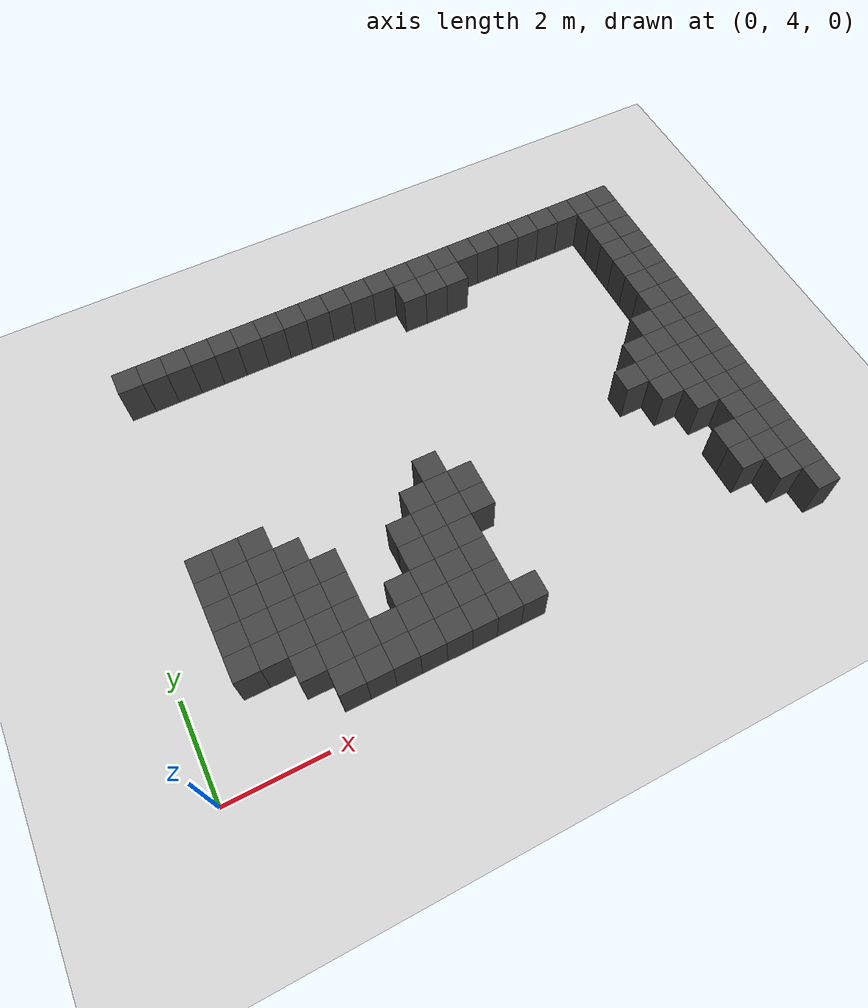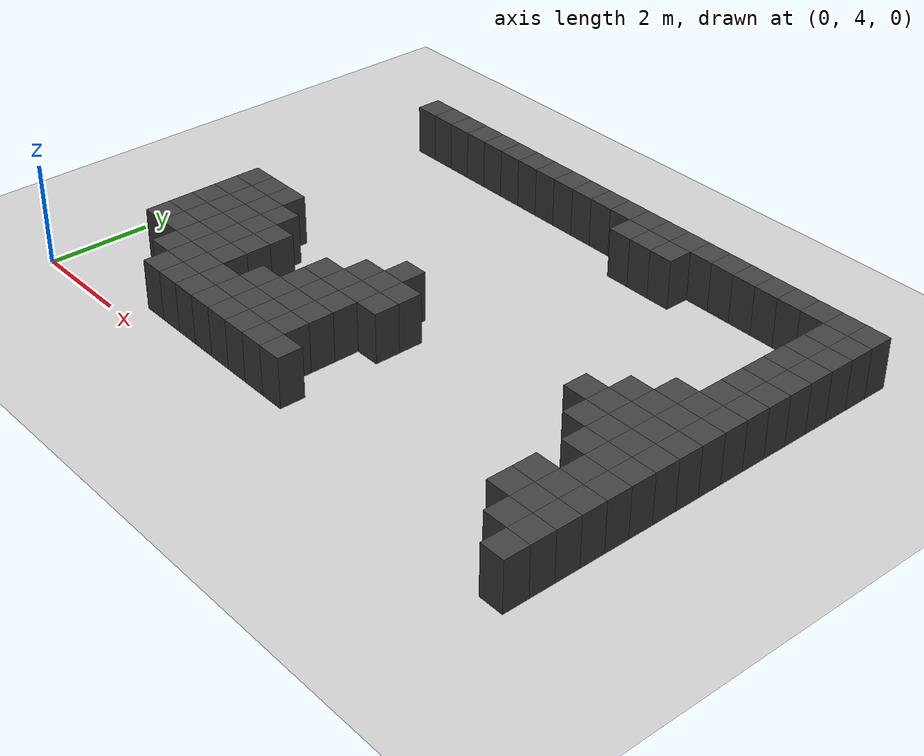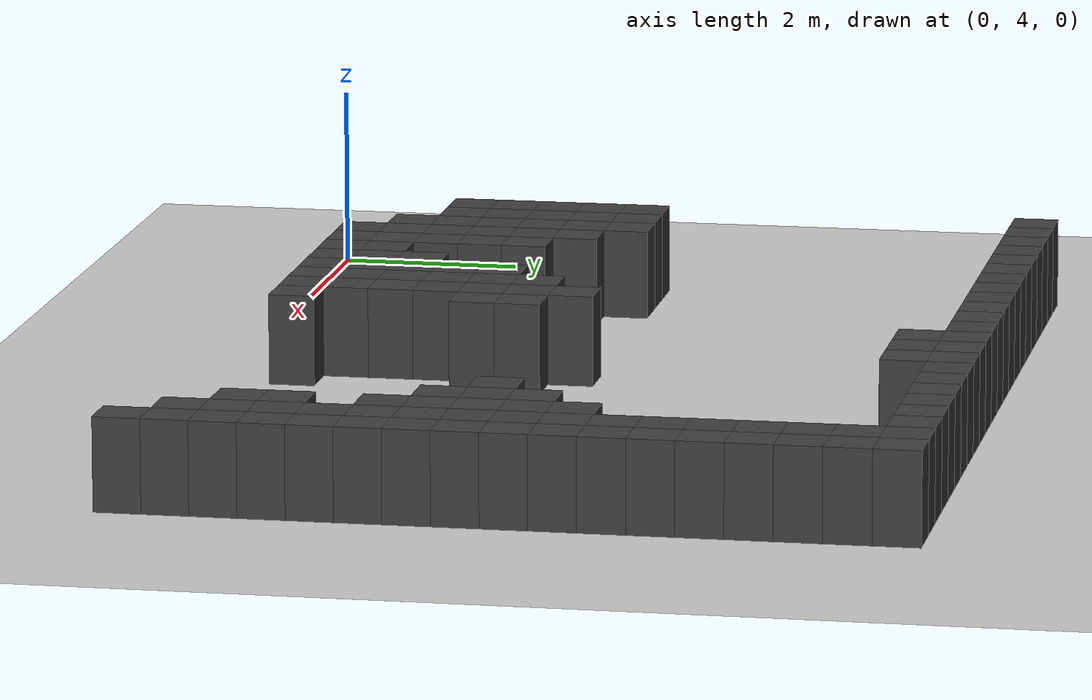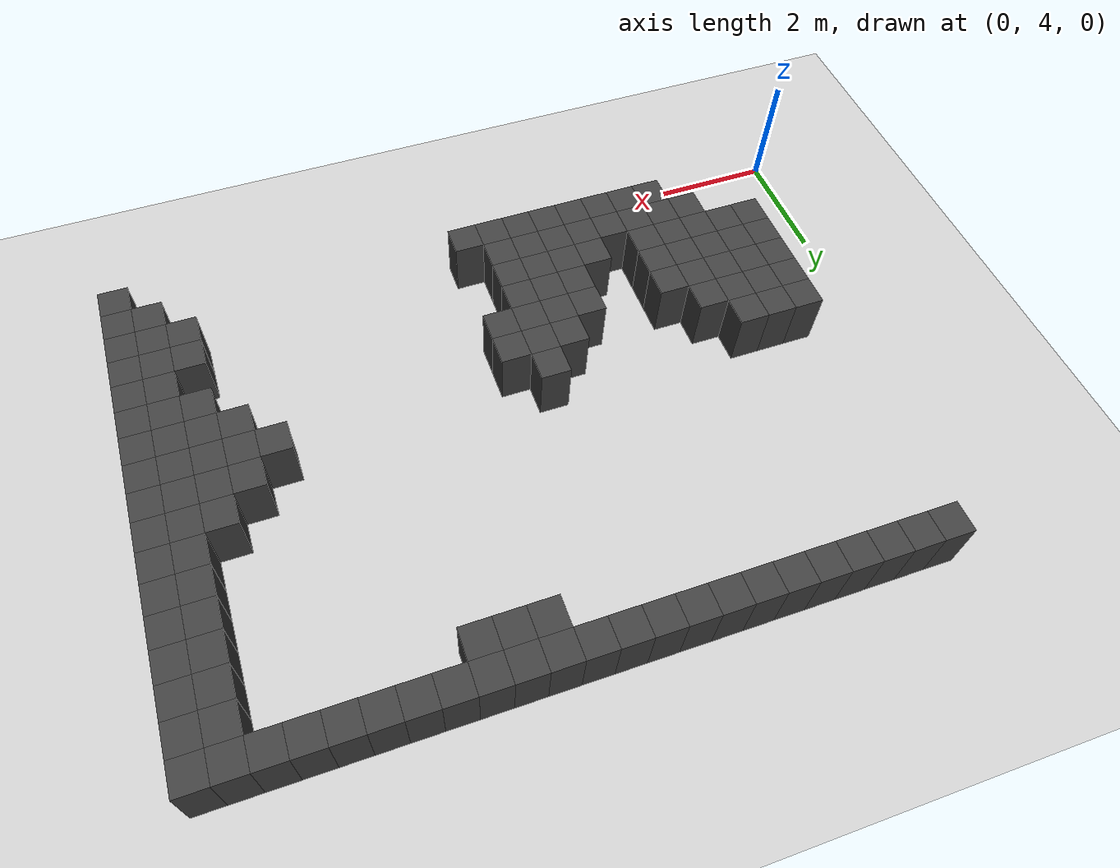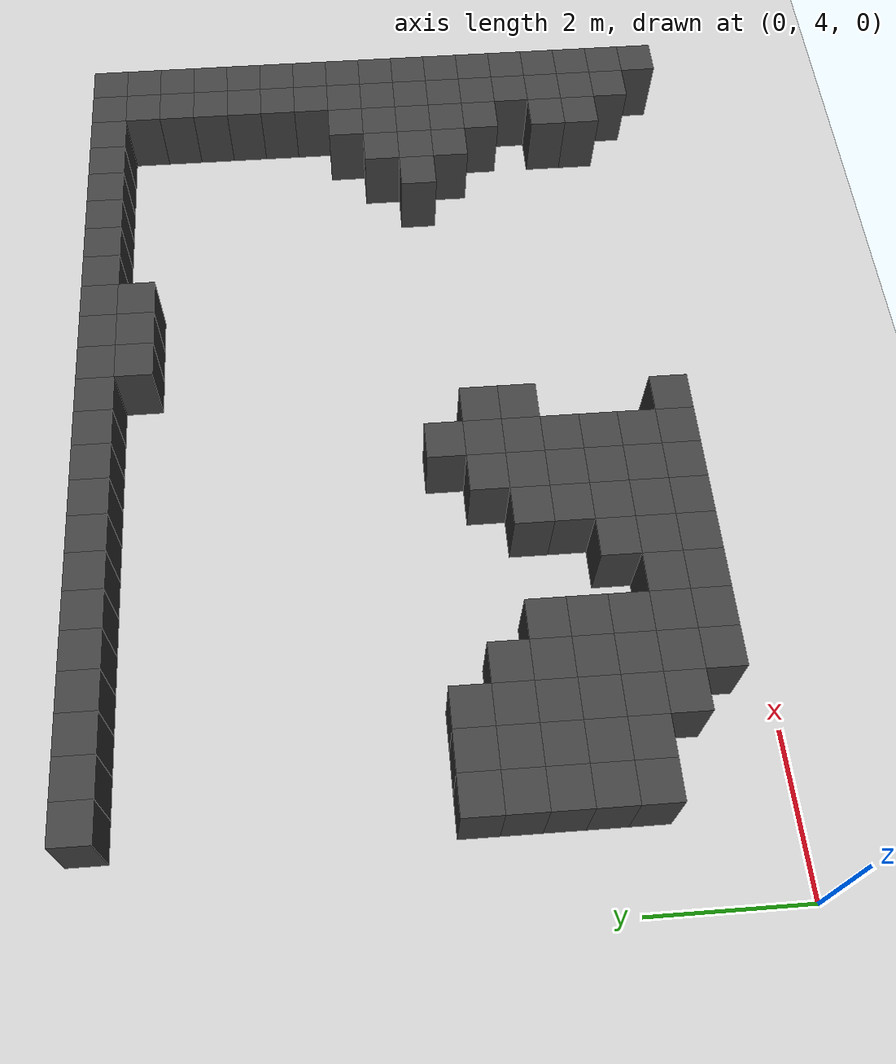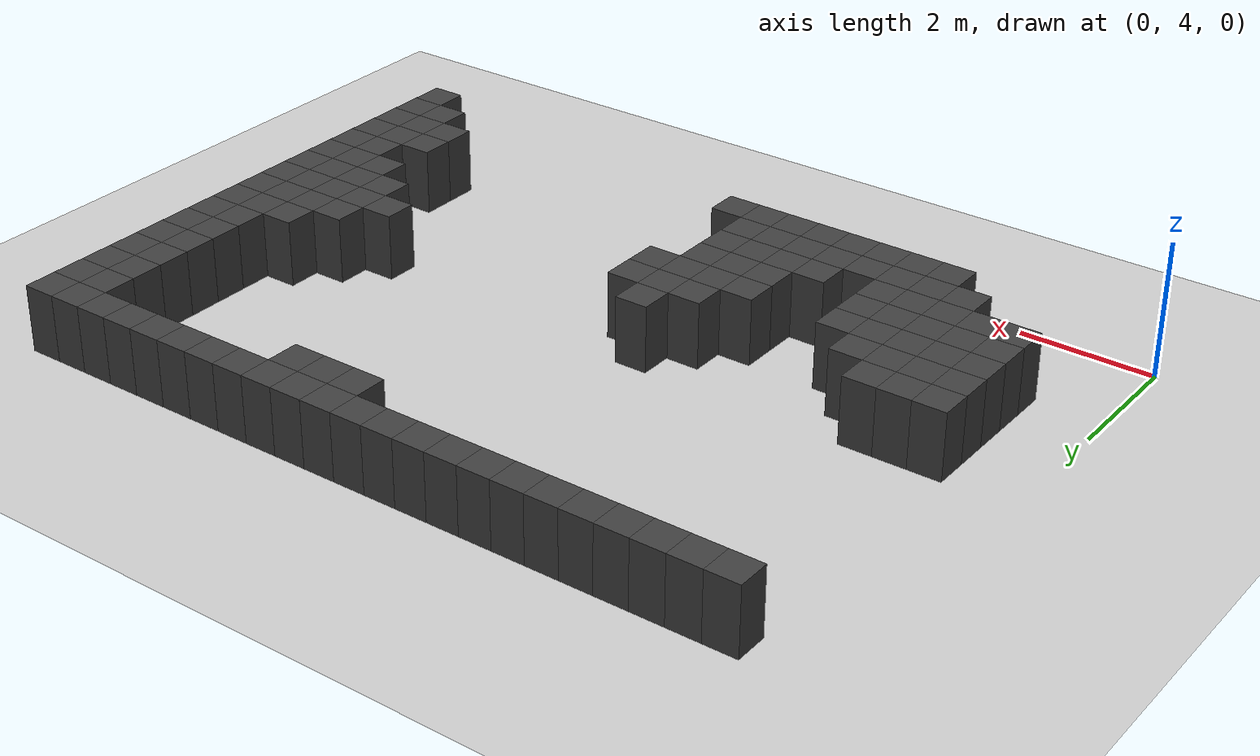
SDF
<sdf version="1.7">
 <world name="map_8661">
  <model name="ground_plane">
   <static>true</static>
   <link name="link">
    <collision name="collision">
     <geometry><plane><normal>0 0 1</normal><size>200 200</size></plane></geometry>
    </collision>
    <visual name="visual">
     <geometry><plane><normal>0 0 1</normal><size>200 200</size></plane></geometry>
     <material><ambient>0.8 0.8 0.8 1</ambient><diffuse>0.8 0.8 0.8 1</diffuse></material>
    </visual>
   </link>
  </model>
  <model name="maze_environment">
   <static>true</static>
   <link name="wall_27">
    <pose>1.250 12.250 0.500 0 0 0</pose>
    <collision name="col"><geometry><box><size>0.5 0.5 1.0</size></box></geometry></collision>
    <visual name="vis">
     <geometry><box><size>0.5 0.5 1.0</size></box></geometry>
     <material><ambient>0.15 0.15 0.15 1</ambient><diffuse>0.25 0.25 0.25 1</diffuse></material>
    </visual>
   </link>
   <link name="wall_28">
    <pose>1.750 12.250 0.500 0 0 0</pose>
    <collision name="col"><geometry><box><size>0.5 0.5 1.0</size></box></geometry></collision>
    <visual name="vis">
     <geometry><box><size>0.5 0.5 1.0</size></box></geometry>
     <material><ambient>0.15 0.15 0.15 1</ambient><diffuse>0.25 0.25 0.25 1</diffuse></material>
    </visual>
   </link>
   <link name="wall_29">
    <pose>2.250 12.250 0.500 0 0 0</pose>
    <collision name="col"><geometry><box><size>0.5 0.5 1.0</size></box></geometry></collision>
    <visual name="vis">
     <geometry><box><size>0.5 0.5 1.0</size></box></geometry>
     <material><ambient>0.15 0.15 0.15 1</ambient><diffuse>0.25 0.25 0.25 1</diffuse></material>
    </visual>
   </link>
   <link name="wall_30">
    <pose>2.750 12.250 0.500 0 0 0</pose>
    <collision name="col"><geometry><box><size>0.5 0.5 1.0</size></box></geometry></collision>
    <visual name="vis">
     <geometry><box><size>0.5 0.5 1.0</size></box></geometry>
     <material><ambient>0.15 0.15 0.15 1</ambient><diffuse>0.25 0.25 0.25 1</diffuse></material>
    </visual>
   </link>
   <link name="wall_31">
    <pose>3.250 12.250 0.500 0 0 0</pose>
    <collision name="col"><geometry><box><size>0.5 0.5 1.0</size></box></geometry></collision>
    <visual name="vis">
     <geometry><box><size>0.5 0.5 1.0</size></box></geometry>
     <material><ambient>0.15 0.15 0.15 1</ambient><diffuse>0.25 0.25 0.25 1</diffuse></material>
    </visual>
   </link>
   <link name="wall_32">
    <pose>3.750 12.250 0.500 0 0 0</pose>
    <collision name="col"><geometry><box><size>0.5 0.5 1.0</size></box></geometry></collision>
    <visual name="vis">
     <geometry><box><size>0.5 0.5 1.0</size></box></geometry>
     <material><ambient>0.15 0.15 0.15 1</ambient><diffuse>0.25 0.25 0.25 1</diffuse></material>
    </visual>
   </link>
   <link name="wall_33">
    <pose>4.250 12.250 0.500 0 0 0</pose>
    <collision name="col"><geometry><box><size>0.5 0.5 1.0</size></box></geometry></collision>
    <visual name="vis">
     <geometry><box><size>0.5 0.5 1.0</size></box></geometry>
     <material><ambient>0.15 0.15 0.15 1</ambient><diffuse>0.25 0.25 0.25 1</diffuse></material>
    </visual>
   </link>
   <link name="wall_34">
    <pose>4.750 12.250 0.500 0 0 0</pose>
    <collision name="col"><geometry><box><size>0.5 0.5 1.0</size></box></geometry></collision>
    <visual name="vis">
     <geometry><box><size>0.5 0.5 1.0</size></box></geometry>
     <material><ambient>0.15 0.15 0.15 1</ambient><diffuse>0.25 0.25 0.25 1</diffuse></material>
    </visual>
   </link>
   <link name="wall_35">
    <pose>5.250 12.250 0.500 0 0 0</pose>
    <collision name="col"><geometry><box><size>0.5 0.5 1.0</size></box></geometry></collision>
    <visual name="vis">
     <geometry><box><size>0.5 0.5 1.0</size></box></geometry>
     <material><ambient>0.15 0.15 0.15 1</ambient><diffuse>0.25 0.25 0.25 1</diffuse></material>
    </visual>
   </link>
   <link name="wall_36">
    <pose>5.750 12.250 0.500 0 0 0</pose>
    <collision name="col"><geometry><box><size>0.5 0.5 1.0</size></box></geometry></collision>
    <visual name="vis">
     <geometry><box><size>0.5 0.5 1.0</size></box></geometry>
     <material><ambient>0.15 0.15 0.15 1</ambient><diffuse>0.25 0.25 0.25 1</diffuse></material>
    </visual>
   </link>
   <link name="wall_37">
    <pose>6.250 12.250 0.500 0 0 0</pose>
    <collision name="col"><geometry><box><size>0.5 0.5 1.0</size></box></geometry></collision>
    <visual name="vis">
     <geometry><box><size>0.5 0.5 1.0</size></box></geometry>
     <material><ambient>0.15 0.15 0.15 1</ambient><diffuse>0.25 0.25 0.25 1</diffuse></material>
    </visual>
   </link>
   <link name="wall_38">
    <pose>6.750 12.250 0.500 0 0 0</pose>
    <collision name="col"><geometry><box><size>0.5 0.5 1.0</size></box></geometry></collision>
    <visual name="vis">
     <geometry><box><size>0.5 0.5 1.0</size></box></geometry>
     <material><ambient>0.15 0.15 0.15 1</ambient><diffuse>0.25 0.25 0.25 1</diffuse></material>
    </visual>
   </link>
   <link name="wall_39">
    <pose>7.250 12.250 0.500 0 0 0</pose>
    <collision name="col"><geometry><box><size>0.5 0.5 1.0</size></box></geometry></collision>
    <visual name="vis">
     <geometry><box><size>0.5 0.5 1.0</size></box></geometry>
     <material><ambient>0.15 0.15 0.15 1</ambient><diffuse>0.25 0.25 0.25 1</diffuse></material>
    </visual>
   </link>
   <link name="wall_40">
    <pose>7.750 12.250 0.500 0 0 0</pose>
    <collision name="col"><geometry><box><size>0.5 0.5 1.0</size></box></geometry></collision>
    <visual name="vis">
     <geometry><box><size>0.5 0.5 1.0</size></box></geometry>
     <material><ambient>0.15 0.15 0.15 1</ambient><diffuse>0.25 0.25 0.25 1</diffuse></material>
    </visual>
   </link>
   <link name="wall_41">
    <pose>8.250 12.250 0.500 0 0 0</pose>
    <collision name="col"><geometry><box><size>0.5 0.5 1.0</size></box></geometry></collision>
    <visual name="vis">
     <geometry><box><size>0.5 0.5 1.0</size></box></geometry>
     <material><ambient>0.15 0.15 0.15 1</ambient><diffuse>0.25 0.25 0.25 1</diffuse></material>
    </visual>
   </link>
   <link name="wall_42">
    <pose>8.750 12.250 0.500 0 0 0</pose>
    <collision name="col"><geometry><box><size>0.5 0.5 1.0</size></box></geometry></collision>
    <visual name="vis">
     <geometry><box><size>0.5 0.5 1.0</size></box></geometry>
     <material><ambient>0.15 0.15 0.15 1</ambient><diffuse>0.25 0.25 0.25 1</diffuse></material>
    </visual>
   </link>
   <link name="wall_43">
    <pose>9.250 12.250 0.500 0 0 0</pose>
    <collision name="col"><geometry><box><size>0.5 0.5 1.0</size></box></geometry></collision>
    <visual name="vis">
     <geometry><box><size>0.5 0.5 1.0</size></box></geometry>
     <material><ambient>0.15 0.15 0.15 1</ambient><diffuse>0.25 0.25 0.25 1</diffuse></material>
    </visual>
   </link>
   <link name="wall_44">
    <pose>9.750 12.250 0.500 0 0 0</pose>
    <collision name="col"><geometry><box><size>0.5 0.5 1.0</size></box></geometry></collision>
    <visual name="vis">
     <geometry><box><size>0.5 0.5 1.0</size></box></geometry>
     <material><ambient>0.15 0.15 0.15 1</ambient><diffuse>0.25 0.25 0.25 1</diffuse></material>
    </visual>
   </link>
   <link name="wall_45">
    <pose>10.250 12.250 0.500 0 0 0</pose>
    <collision name="col"><geometry><box><size>0.5 0.5 1.0</size></box></geometry></collision>
    <visual name="vis">
     <geometry><box><size>0.5 0.5 1.0</size></box></geometry>
     <material><ambient>0.15 0.15 0.15 1</ambient><diffuse>0.25 0.25 0.25 1</diffuse></material>
    </visual>
   </link>
   <link name="wall_46">
    <pose>10.750 12.250 0.500 0 0 0</pose>
    <collision name="col"><geometry><box><size>0.5 0.5 1.0</size></box></geometry></collision>
    <visual name="vis">
     <geometry><box><size>0.5 0.5 1.0</size></box></geometry>
     <material><ambient>0.15 0.15 0.15 1</ambient><diffuse>0.25 0.25 0.25 1</diffuse></material>
    </visual>
   </link>
   <link name="wall_47">
    <pose>11.250 12.250 0.500 0 0 0</pose>
    <collision name="col"><geometry><box><size>0.5 0.5 1.0</size></box></geometry></collision>
    <visual name="vis">
     <geometry><box><size>0.5 0.5 1.0</size></box></geometry>
     <material><ambient>0.15 0.15 0.15 1</ambient><diffuse>0.25 0.25 0.25 1</diffuse></material>
    </visual>
   </link>
   <link name="wall_48">
    <pose>11.750 12.250 0.500 0 0 0</pose>
    <collision name="col"><geometry><box><size>0.5 0.5 1.0</size></box></geometry></collision>
    <visual name="vis">
     <geometry><box><size>0.5 0.5 1.0</size></box></geometry>
     <material><ambient>0.15 0.15 0.15 1</ambient><diffuse>0.25 0.25 0.25 1</diffuse></material>
    </visual>
   </link>
   <link name="wall_49">
    <pose>12.250 12.250 0.500 0 0 0</pose>
    <collision name="col"><geometry><box><size>0.5 0.5 1.0</size></box></geometry></collision>
    <visual name="vis">
     <geometry><box><size>0.5 0.5 1.0</size></box></geometry>
     <material><ambient>0.15 0.15 0.15 1</ambient><diffuse>0.25 0.25 0.25 1</diffuse></material>
    </visual>
   </link>
   <link name="wall_63">
    <pose>7.250 11.750 0.500 0 0 0</pose>
    <collision name="col"><geometry><box><size>0.5 0.5 1.0</size></box></geometry></collision>
    <visual name="vis">
     <geometry><box><size>0.5 0.5 1.0</size></box></geometry>
     <material><ambient>0.15 0.15 0.15 1</ambient><diffuse>0.25 0.25 0.25 1</diffuse></material>
    </visual>
   </link>
   <link name="wall_64">
    <pose>7.750 11.750 0.500 0 0 0</pose>
    <collision name="col"><geometry><box><size>0.5 0.5 1.0</size></box></geometry></collision>
    <visual name="vis">
     <geometry><box><size>0.5 0.5 1.0</size></box></geometry>
     <material><ambient>0.15 0.15 0.15 1</ambient><diffuse>0.25 0.25 0.25 1</diffuse></material>
    </visual>
   </link>
   <link name="wall_65">
    <pose>8.250 11.750 0.500 0 0 0</pose>
    <collision name="col"><geometry><box><size>0.5 0.5 1.0</size></box></geometry></collision>
    <visual name="vis">
     <geometry><box><size>0.5 0.5 1.0</size></box></geometry>
     <material><ambient>0.15 0.15 0.15 1</ambient><diffuse>0.25 0.25 0.25 1</diffuse></material>
    </visual>
   </link>
   <link name="wall_66">
    <pose>11.750 11.750 0.500 0 0 0</pose>
    <collision name="col"><geometry><box><size>0.5 0.5 1.0</size></box></geometry></collision>
    <visual name="vis">
     <geometry><box><size>0.5 0.5 1.0</size></box></geometry>
     <material><ambient>0.15 0.15 0.15 1</ambient><diffuse>0.25 0.25 0.25 1</diffuse></material>
    </visual>
   </link>
   <link name="wall_67">
    <pose>12.250 11.750 0.500 0 0 0</pose>
    <collision name="col"><geometry><box><size>0.5 0.5 1.0</size></box></geometry></collision>
    <visual name="vis">
     <geometry><box><size>0.5 0.5 1.0</size></box></geometry>
     <material><ambient>0.15 0.15 0.15 1</ambient><diffuse>0.25 0.25 0.25 1</diffuse></material>
    </visual>
   </link>
   <link name="wall_74">
    <pose>11.750 11.250 0.500 0 0 0</pose>
    <collision name="col"><geometry><box><size>0.5 0.5 1.0</size></box></geometry></collision>
    <visual name="vis">
     <geometry><box><size>0.5 0.5 1.0</size></box></geometry>
     <material><ambient>0.15 0.15 0.15 1</ambient><diffuse>0.25 0.25 0.25 1</diffuse></material>
    </visual>
   </link>
   <link name="wall_75">
    <pose>12.250 11.250 0.500 0 0 0</pose>
    <collision name="col"><geometry><box><size>0.5 0.5 1.0</size></box></geometry></collision>
    <visual name="vis">
     <geometry><box><size>0.5 0.5 1.0</size></box></geometry>
     <material><ambient>0.15 0.15 0.15 1</ambient><diffuse>0.25 0.25 0.25 1</diffuse></material>
    </visual>
   </link>
   <link name="wall_81">
    <pose>11.750 10.750 0.500 0 0 0</pose>
    <collision name="col"><geometry><box><size>0.5 0.5 1.0</size></box></geometry></collision>
    <visual name="vis">
     <geometry><box><size>0.5 0.5 1.0</size></box></geometry>
     <material><ambient>0.15 0.15 0.15 1</ambient><diffuse>0.25 0.25 0.25 1</diffuse></material>
    </visual>
   </link>
   <link name="wall_82">
    <pose>12.250 10.750 0.500 0 0 0</pose>
    <collision name="col"><geometry><box><size>0.5 0.5 1.0</size></box></geometry></collision>
    <visual name="vis">
     <geometry><box><size>0.5 0.5 1.0</size></box></geometry>
     <material><ambient>0.15 0.15 0.15 1</ambient><diffuse>0.25 0.25 0.25 1</diffuse></material>
    </visual>
   </link>
   <link name="wall_87">
    <pose>11.750 10.250 0.500 0 0 0</pose>
    <collision name="col"><geometry><box><size>0.5 0.5 1.0</size></box></geometry></collision>
    <visual name="vis">
     <geometry><box><size>0.5 0.5 1.0</size></box></geometry>
     <material><ambient>0.15 0.15 0.15 1</ambient><diffuse>0.25 0.25 0.25 1</diffuse></material>
    </visual>
   </link>
   <link name="wall_88">
    <pose>12.250 10.250 0.500 0 0 0</pose>
    <collision name="col"><geometry><box><size>0.5 0.5 1.0</size></box></geometry></collision>
    <visual name="vis">
     <geometry><box><size>0.5 0.5 1.0</size></box></geometry>
     <material><ambient>0.15 0.15 0.15 1</ambient><diffuse>0.25 0.25 0.25 1</diffuse></material>
    </visual>
   </link>
   <link name="wall_90">
    <pose>11.750 9.750 0.500 0 0 0</pose>
    <collision name="col"><geometry><box><size>0.5 0.5 1.0</size></box></geometry></collision>
    <visual name="vis">
     <geometry><box><size>0.5 0.5 1.0</size></box></geometry>
     <material><ambient>0.15 0.15 0.15 1</ambient><diffuse>0.25 0.25 0.25 1</diffuse></material>
    </visual>
   </link>
   <link name="wall_91">
    <pose>12.250 9.750 0.500 0 0 0</pose>
    <collision name="col"><geometry><box><size>0.5 0.5 1.0</size></box></geometry></collision>
    <visual name="vis">
     <geometry><box><size>0.5 0.5 1.0</size></box></geometry>
     <material><ambient>0.15 0.15 0.15 1</ambient><diffuse>0.25 0.25 0.25 1</diffuse></material>
    </visual>
   </link>
   <link name="wall_93">
    <pose>11.750 9.250 0.500 0 0 0</pose>
    <collision name="col"><geometry><box><size>0.5 0.5 1.0</size></box></geometry></collision>
    <visual name="vis">
     <geometry><box><size>0.5 0.5 1.0</size></box></geometry>
     <material><ambient>0.15 0.15 0.15 1</ambient><diffuse>0.25 0.25 0.25 1</diffuse></material>
    </visual>
   </link>
   <link name="wall_94">
    <pose>12.250 9.250 0.500 0 0 0</pose>
    <collision name="col"><geometry><box><size>0.5 0.5 1.0</size></box></geometry></collision>
    <visual name="vis">
     <geometry><box><size>0.5 0.5 1.0</size></box></geometry>
     <material><ambient>0.15 0.15 0.15 1</ambient><diffuse>0.25 0.25 0.25 1</diffuse></material>
    </visual>
   </link>
   <link name="wall_96">
    <pose>11.250 8.750 0.500 0 0 0</pose>
    <collision name="col"><geometry><box><size>0.5 0.5 1.0</size></box></geometry></collision>
    <visual name="vis">
     <geometry><box><size>0.5 0.5 1.0</size></box></geometry>
     <material><ambient>0.15 0.15 0.15 1</ambient><diffuse>0.25 0.25 0.25 1</diffuse></material>
    </visual>
   </link>
   <link name="wall_97">
    <pose>11.750 8.750 0.500 0 0 0</pose>
    <collision name="col"><geometry><box><size>0.5 0.5 1.0</size></box></geometry></collision>
    <visual name="vis">
     <geometry><box><size>0.5 0.5 1.0</size></box></geometry>
     <material><ambient>0.15 0.15 0.15 1</ambient><diffuse>0.25 0.25 0.25 1</diffuse></material>
    </visual>
   </link>
   <link name="wall_98">
    <pose>12.250 8.750 0.500 0 0 0</pose>
    <collision name="col"><geometry><box><size>0.5 0.5 1.0</size></box></geometry></collision>
    <visual name="vis">
     <geometry><box><size>0.5 0.5 1.0</size></box></geometry>
     <material><ambient>0.15 0.15 0.15 1</ambient><diffuse>0.25 0.25 0.25 1</diffuse></material>
    </visual>
   </link>
   <link name="wall_104">
    <pose>10.750 8.250 0.500 0 0 0</pose>
    <collision name="col"><geometry><box><size>0.5 0.5 1.0</size></box></geometry></collision>
    <visual name="vis">
     <geometry><box><size>0.5 0.5 1.0</size></box></geometry>
     <material><ambient>0.15 0.15 0.15 1</ambient><diffuse>0.25 0.25 0.25 1</diffuse></material>
    </visual>
   </link>
   <link name="wall_105">
    <pose>11.250 8.250 0.500 0 0 0</pose>
    <collision name="col"><geometry><box><size>0.5 0.5 1.0</size></box></geometry></collision>
    <visual name="vis">
     <geometry><box><size>0.5 0.5 1.0</size></box></geometry>
     <material><ambient>0.15 0.15 0.15 1</ambient><diffuse>0.25 0.25 0.25 1</diffuse></material>
    </visual>
   </link>
   <link name="wall_106">
    <pose>11.750 8.250 0.500 0 0 0</pose>
    <collision name="col"><geometry><box><size>0.5 0.5 1.0</size></box></geometry></collision>
    <visual name="vis">
     <geometry><box><size>0.5 0.5 1.0</size></box></geometry>
     <material><ambient>0.15 0.15 0.15 1</ambient><diffuse>0.25 0.25 0.25 1</diffuse></material>
    </visual>
   </link>
   <link name="wall_107">
    <pose>12.250 8.250 0.500 0 0 0</pose>
    <collision name="col"><geometry><box><size>0.5 0.5 1.0</size></box></geometry></collision>
    <visual name="vis">
     <geometry><box><size>0.5 0.5 1.0</size></box></geometry>
     <material><ambient>0.15 0.15 0.15 1</ambient><diffuse>0.25 0.25 0.25 1</diffuse></material>
    </visual>
   </link>
   <link name="wall_115">
    <pose>1.250 7.750 0.500 0 0 0</pose>
    <collision name="col"><geometry><box><size>0.5 0.5 1.0</size></box></geometry></collision>
    <visual name="vis">
     <geometry><box><size>0.5 0.5 1.0</size></box></geometry>
     <material><ambient>0.15 0.15 0.15 1</ambient><diffuse>0.25 0.25 0.25 1</diffuse></material>
    </visual>
   </link>
   <link name="wall_116">
    <pose>1.750 7.750 0.500 0 0 0</pose>
    <collision name="col"><geometry><box><size>0.5 0.5 1.0</size></box></geometry></collision>
    <visual name="vis">
     <geometry><box><size>0.5 0.5 1.0</size></box></geometry>
     <material><ambient>0.15 0.15 0.15 1</ambient><diffuse>0.25 0.25 0.25 1</diffuse></material>
    </visual>
   </link>
   <link name="wall_117">
    <pose>2.250 7.750 0.500 0 0 0</pose>
    <collision name="col"><geometry><box><size>0.5 0.5 1.0</size></box></geometry></collision>
    <visual name="vis">
     <geometry><box><size>0.5 0.5 1.0</size></box></geometry>
     <material><ambient>0.15 0.15 0.15 1</ambient><diffuse>0.25 0.25 0.25 1</diffuse></material>
    </visual>
   </link>
   <link name="wall_118">
    <pose>5.750 7.750 0.500 0 0 0</pose>
    <collision name="col"><geometry><box><size>0.5 0.5 1.0</size></box></geometry></collision>
    <visual name="vis">
     <geometry><box><size>0.5 0.5 1.0</size></box></geometry>
     <material><ambient>0.15 0.15 0.15 1</ambient><diffuse>0.25 0.25 0.25 1</diffuse></material>
    </visual>
   </link>
   <link name="wall_119">
    <pose>10.250 7.750 0.500 0 0 0</pose>
    <collision name="col"><geometry><box><size>0.5 0.5 1.0</size></box></geometry></collision>
    <visual name="vis">
     <geometry><box><size>0.5 0.5 1.0</size></box></geometry>
     <material><ambient>0.15 0.15 0.15 1</ambient><diffuse>0.25 0.25 0.25 1</diffuse></material>
    </visual>
   </link>
   <link name="wall_120">
    <pose>10.750 7.750 0.500 0 0 0</pose>
    <collision name="col"><geometry><box><size>0.5 0.5 1.0</size></box></geometry></collision>
    <visual name="vis">
     <geometry><box><size>0.5 0.5 1.0</size></box></geometry>
     <material><ambient>0.15 0.15 0.15 1</ambient><diffuse>0.25 0.25 0.25 1</diffuse></material>
    </visual>
   </link>
   <link name="wall_121">
    <pose>11.250 7.750 0.500 0 0 0</pose>
    <collision name="col"><geometry><box><size>0.5 0.5 1.0</size></box></geometry></collision>
    <visual name="vis">
     <geometry><box><size>0.5 0.5 1.0</size></box></geometry>
     <material><ambient>0.15 0.15 0.15 1</ambient><diffuse>0.25 0.25 0.25 1</diffuse></material>
    </visual>
   </link>
   <link name="wall_122">
    <pose>11.750 7.750 0.500 0 0 0</pose>
    <collision name="col"><geometry><box><size>0.5 0.5 1.0</size></box></geometry></collision>
    <visual name="vis">
     <geometry><box><size>0.5 0.5 1.0</size></box></geometry>
     <material><ambient>0.15 0.15 0.15 1</ambient><diffuse>0.25 0.25 0.25 1</diffuse></material>
    </visual>
   </link>
   <link name="wall_123">
    <pose>12.250 7.750 0.500 0 0 0</pose>
    <collision name="col"><geometry><box><size>0.5 0.5 1.0</size></box></geometry></collision>
    <visual name="vis">
     <geometry><box><size>0.5 0.5 1.0</size></box></geometry>
     <material><ambient>0.15 0.15 0.15 1</ambient><diffuse>0.25 0.25 0.25 1</diffuse></material>
    </visual>
   </link>
   <link name="wall_132">
    <pose>1.250 7.250 0.500 0 0 0</pose>
    <collision name="col"><geometry><box><size>0.5 0.5 1.0</size></box></geometry></collision>
    <visual name="vis">
     <geometry><box><size>0.5 0.5 1.0</size></box></geometry>
     <material><ambient>0.15 0.15 0.15 1</ambient><diffuse>0.25 0.25 0.25 1</diffuse></material>
    </visual>
   </link>
   <link name="wall_133">
    <pose>1.750 7.250 0.500 0 0 0</pose>
    <collision name="col"><geometry><box><size>0.5 0.5 1.0</size></box></geometry></collision>
    <visual name="vis">
     <geometry><box><size>0.5 0.5 1.0</size></box></geometry>
     <material><ambient>0.15 0.15 0.15 1</ambient><diffuse>0.25 0.25 0.25 1</diffuse></material>
    </visual>
   </link>
   <link name="wall_134">
    <pose>2.250 7.250 0.500 0 0 0</pose>
    <collision name="col"><geometry><box><size>0.5 0.5 1.0</size></box></geometry></collision>
    <visual name="vis">
     <geometry><box><size>0.5 0.5 1.0</size></box></geometry>
     <material><ambient>0.15 0.15 0.15 1</ambient><diffuse>0.25 0.25 0.25 1</diffuse></material>
    </visual>
   </link>
   <link name="wall_135">
    <pose>2.750 7.250 0.500 0 0 0</pose>
    <collision name="col"><geometry><box><size>0.5 0.5 1.0</size></box></geometry></collision>
    <visual name="vis">
     <geometry><box><size>0.5 0.5 1.0</size></box></geometry>
     <material><ambient>0.15 0.15 0.15 1</ambient><diffuse>0.25 0.25 0.25 1</diffuse></material>
    </visual>
   </link>
   <link name="wall_136">
    <pose>5.250 7.250 0.500 0 0 0</pose>
    <collision name="col"><geometry><box><size>0.5 0.5 1.0</size></box></geometry></collision>
    <visual name="vis">
     <geometry><box><size>0.5 0.5 1.0</size></box></geometry>
     <material><ambient>0.15 0.15 0.15 1</ambient><diffuse>0.25 0.25 0.25 1</diffuse></material>
    </visual>
   </link>
   <link name="wall_137">
    <pose>5.750 7.250 0.500 0 0 0</pose>
    <collision name="col"><geometry><box><size>0.5 0.5 1.0</size></box></geometry></collision>
    <visual name="vis">
     <geometry><box><size>0.5 0.5 1.0</size></box></geometry>
     <material><ambient>0.15 0.15 0.15 1</ambient><diffuse>0.25 0.25 0.25 1</diffuse></material>
    </visual>
   </link>
   <link name="wall_138">
    <pose>6.250 7.250 0.500 0 0 0</pose>
    <collision name="col"><geometry><box><size>0.5 0.5 1.0</size></box></geometry></collision>
    <visual name="vis">
     <geometry><box><size>0.5 0.5 1.0</size></box></geometry>
     <material><ambient>0.15 0.15 0.15 1</ambient><diffuse>0.25 0.25 0.25 1</diffuse></material>
    </visual>
   </link>
   <link name="wall_139">
    <pose>10.750 7.250 0.500 0 0 0</pose>
    <collision name="col"><geometry><box><size>0.5 0.5 1.0</size></box></geometry></collision>
    <visual name="vis">
     <geometry><box><size>0.5 0.5 1.0</size></box></geometry>
     <material><ambient>0.15 0.15 0.15 1</ambient><diffuse>0.25 0.25 0.25 1</diffuse></material>
    </visual>
   </link>
   <link name="wall_140">
    <pose>11.250 7.250 0.500 0 0 0</pose>
    <collision name="col"><geometry><box><size>0.5 0.5 1.0</size></box></geometry></collision>
    <visual name="vis">
     <geometry><box><size>0.5 0.5 1.0</size></box></geometry>
     <material><ambient>0.15 0.15 0.15 1</ambient><diffuse>0.25 0.25 0.25 1</diffuse></material>
    </visual>
   </link>
   <link name="wall_141">
    <pose>11.750 7.250 0.500 0 0 0</pose>
    <collision name="col"><geometry><box><size>0.5 0.5 1.0</size></box></geometry></collision>
    <visual name="vis">
     <geometry><box><size>0.5 0.5 1.0</size></box></geometry>
     <material><ambient>0.15 0.15 0.15 1</ambient><diffuse>0.25 0.25 0.25 1</diffuse></material>
    </visual>
   </link>
   <link name="wall_142">
    <pose>12.250 7.250 0.500 0 0 0</pose>
    <collision name="col"><geometry><box><size>0.5 0.5 1.0</size></box></geometry></collision>
    <visual name="vis">
     <geometry><box><size>0.5 0.5 1.0</size></box></geometry>
     <material><ambient>0.15 0.15 0.15 1</ambient><diffuse>0.25 0.25 0.25 1</diffuse></material>
    </visual>
   </link>
   <link name="wall_152">
    <pose>1.250 6.750 0.500 0 0 0</pose>
    <collision name="col"><geometry><box><size>0.5 0.5 1.0</size></box></geometry></collision>
    <visual name="vis">
     <geometry><box><size>0.5 0.5 1.0</size></box></geometry>
     <material><ambient>0.15 0.15 0.15 1</ambient><diffuse>0.25 0.25 0.25 1</diffuse></material>
    </visual>
   </link>
   <link name="wall_153">
    <pose>1.750 6.750 0.500 0 0 0</pose>
    <collision name="col"><geometry><box><size>0.5 0.5 1.0</size></box></geometry></collision>
    <visual name="vis">
     <geometry><box><size>0.5 0.5 1.0</size></box></geometry>
     <material><ambient>0.15 0.15 0.15 1</ambient><diffuse>0.25 0.25 0.25 1</diffuse></material>
    </visual>
   </link>
   <link name="wall_154">
    <pose>2.250 6.750 0.500 0 0 0</pose>
    <collision name="col"><geometry><box><size>0.5 0.5 1.0</size></box></geometry></collision>
    <visual name="vis">
     <geometry><box><size>0.5 0.5 1.0</size></box></geometry>
     <material><ambient>0.15 0.15 0.15 1</ambient><diffuse>0.25 0.25 0.25 1</diffuse></material>
    </visual>
   </link>
   <link name="wall_155">
    <pose>2.750 6.750 0.500 0 0 0</pose>
    <collision name="col"><geometry><box><size>0.5 0.5 1.0</size></box></geometry></collision>
    <visual name="vis">
     <geometry><box><size>0.5 0.5 1.0</size></box></geometry>
     <material><ambient>0.15 0.15 0.15 1</ambient><diffuse>0.25 0.25 0.25 1</diffuse></material>
    </visual>
   </link>
   <link name="wall_156">
    <pose>3.250 6.750 0.500 0 0 0</pose>
    <collision name="col"><geometry><box><size>0.5 0.5 1.0</size></box></geometry></collision>
    <visual name="vis">
     <geometry><box><size>0.5 0.5 1.0</size></box></geometry>
     <material><ambient>0.15 0.15 0.15 1</ambient><diffuse>0.25 0.25 0.25 1</diffuse></material>
    </visual>
   </link>
   <link name="wall_157">
    <pose>4.750 6.750 0.500 0 0 0</pose>
    <collision name="col"><geometry><box><size>0.5 0.5 1.0</size></box></geometry></collision>
    <visual name="vis">
     <geometry><box><size>0.5 0.5 1.0</size></box></geometry>
     <material><ambient>0.15 0.15 0.15 1</ambient><diffuse>0.25 0.25 0.25 1</diffuse></material>
    </visual>
   </link>
   <link name="wall_158">
    <pose>5.250 6.750 0.500 0 0 0</pose>
    <collision name="col"><geometry><box><size>0.5 0.5 1.0</size></box></geometry></collision>
    <visual name="vis">
     <geometry><box><size>0.5 0.5 1.0</size></box></geometry>
     <material><ambient>0.15 0.15 0.15 1</ambient><diffuse>0.25 0.25 0.25 1</diffuse></material>
    </visual>
   </link>
   <link name="wall_159">
    <pose>5.750 6.750 0.500 0 0 0</pose>
    <collision name="col"><geometry><box><size>0.5 0.5 1.0</size></box></geometry></collision>
    <visual name="vis">
     <geometry><box><size>0.5 0.5 1.0</size></box></geometry>
     <material><ambient>0.15 0.15 0.15 1</ambient><diffuse>0.25 0.25 0.25 1</diffuse></material>
    </visual>
   </link>
   <link name="wall_160">
    <pose>6.250 6.750 0.500 0 0 0</pose>
    <collision name="col"><geometry><box><size>0.5 0.5 1.0</size></box></geometry></collision>
    <visual name="vis">
     <geometry><box><size>0.5 0.5 1.0</size></box></geometry>
     <material><ambient>0.15 0.15 0.15 1</ambient><diffuse>0.25 0.25 0.25 1</diffuse></material>
    </visual>
   </link>
   <link name="wall_161">
    <pose>11.250 6.750 0.500 0 0 0</pose>
    <collision name="col"><geometry><box><size>0.5 0.5 1.0</size></box></geometry></collision>
    <visual name="vis">
     <geometry><box><size>0.5 0.5 1.0</size></box></geometry>
     <material><ambient>0.15 0.15 0.15 1</ambient><diffuse>0.25 0.25 0.25 1</diffuse></material>
    </visual>
   </link>
   <link name="wall_162">
    <pose>11.750 6.750 0.500 0 0 0</pose>
    <collision name="col"><geometry><box><size>0.5 0.5 1.0</size></box></geometry></collision>
    <visual name="vis">
     <geometry><box><size>0.5 0.5 1.0</size></box></geometry>
     <material><ambient>0.15 0.15 0.15 1</ambient><diffuse>0.25 0.25 0.25 1</diffuse></material>
    </visual>
   </link>
   <link name="wall_163">
    <pose>12.250 6.750 0.500 0 0 0</pose>
    <collision name="col"><geometry><box><size>0.5 0.5 1.0</size></box></geometry></collision>
    <visual name="vis">
     <geometry><box><size>0.5 0.5 1.0</size></box></geometry>
     <material><ambient>0.15 0.15 0.15 1</ambient><diffuse>0.25 0.25 0.25 1</diffuse></material>
    </visual>
   </link>
   <link name="wall_173">
    <pose>1.250 6.250 0.500 0 0 0</pose>
    <collision name="col"><geometry><box><size>0.5 0.5 1.0</size></box></geometry></collision>
    <visual name="vis">
     <geometry><box><size>0.5 0.5 1.0</size></box></geometry>
     <material><ambient>0.15 0.15 0.15 1</ambient><diffuse>0.25 0.25 0.25 1</diffuse></material>
    </visual>
   </link>
   <link name="wall_174">
    <pose>1.750 6.250 0.500 0 0 0</pose>
    <collision name="col"><geometry><box><size>0.5 0.5 1.0</size></box></geometry></collision>
    <visual name="vis">
     <geometry><box><size>0.5 0.5 1.0</size></box></geometry>
     <material><ambient>0.15 0.15 0.15 1</ambient><diffuse>0.25 0.25 0.25 1</diffuse></material>
    </visual>
   </link>
   <link name="wall_175">
    <pose>2.250 6.250 0.500 0 0 0</pose>
    <collision name="col"><geometry><box><size>0.5 0.5 1.0</size></box></geometry></collision>
    <visual name="vis">
     <geometry><box><size>0.5 0.5 1.0</size></box></geometry>
     <material><ambient>0.15 0.15 0.15 1</ambient><diffuse>0.25 0.25 0.25 1</diffuse></material>
    </visual>
   </link>
   <link name="wall_176">
    <pose>2.750 6.250 0.500 0 0 0</pose>
    <collision name="col"><geometry><box><size>0.5 0.5 1.0</size></box></geometry></collision>
    <visual name="vis">
     <geometry><box><size>0.5 0.5 1.0</size></box></geometry>
     <material><ambient>0.15 0.15 0.15 1</ambient><diffuse>0.25 0.25 0.25 1</diffuse></material>
    </visual>
   </link>
   <link name="wall_177">
    <pose>3.250 6.250 0.500 0 0 0</pose>
    <collision name="col"><geometry><box><size>0.5 0.5 1.0</size></box></geometry></collision>
    <visual name="vis">
     <geometry><box><size>0.5 0.5 1.0</size></box></geometry>
     <material><ambient>0.15 0.15 0.15 1</ambient><diffuse>0.25 0.25 0.25 1</diffuse></material>
    </visual>
   </link>
   <link name="wall_178">
    <pose>4.750 6.250 0.500 0 0 0</pose>
    <collision name="col"><geometry><box><size>0.5 0.5 1.0</size></box></geometry></collision>
    <visual name="vis">
     <geometry><box><size>0.5 0.5 1.0</size></box></geometry>
     <material><ambient>0.15 0.15 0.15 1</ambient><diffuse>0.25 0.25 0.25 1</diffuse></material>
    </visual>
   </link>
   <link name="wall_179">
    <pose>5.250 6.250 0.500 0 0 0</pose>
    <collision name="col"><geometry><box><size>0.5 0.5 1.0</size></box></geometry></collision>
    <visual name="vis">
     <geometry><box><size>0.5 0.5 1.0</size></box></geometry>
     <material><ambient>0.15 0.15 0.15 1</ambient><diffuse>0.25 0.25 0.25 1</diffuse></material>
    </visual>
   </link>
   <link name="wall_180">
    <pose>5.750 6.250 0.500 0 0 0</pose>
    <collision name="col"><geometry><box><size>0.5 0.5 1.0</size></box></geometry></collision>
    <visual name="vis">
     <geometry><box><size>0.5 0.5 1.0</size></box></geometry>
     <material><ambient>0.15 0.15 0.15 1</ambient><diffuse>0.25 0.25 0.25 1</diffuse></material>
    </visual>
   </link>
   <link name="wall_181">
    <pose>11.750 6.250 0.500 0 0 0</pose>
    <collision name="col"><geometry><box><size>0.5 0.5 1.0</size></box></geometry></collision>
    <visual name="vis">
     <geometry><box><size>0.5 0.5 1.0</size></box></geometry>
     <material><ambient>0.15 0.15 0.15 1</ambient><diffuse>0.25 0.25 0.25 1</diffuse></material>
    </visual>
   </link>
   <link name="wall_182">
    <pose>12.250 6.250 0.500 0 0 0</pose>
    <collision name="col"><geometry><box><size>0.5 0.5 1.0</size></box></geometry></collision>
    <visual name="vis">
     <geometry><box><size>0.5 0.5 1.0</size></box></geometry>
     <material><ambient>0.15 0.15 0.15 1</ambient><diffuse>0.25 0.25 0.25 1</diffuse></material>
    </visual>
   </link>
   <link name="wall_189">
    <pose>1.250 5.750 0.500 0 0 0</pose>
    <collision name="col"><geometry><box><size>0.5 0.5 1.0</size></box></geometry></collision>
    <visual name="vis">
     <geometry><box><size>0.5 0.5 1.0</size></box></geometry>
     <material><ambient>0.15 0.15 0.15 1</ambient><diffuse>0.25 0.25 0.25 1</diffuse></material>
    </visual>
   </link>
   <link name="wall_190">
    <pose>1.750 5.750 0.500 0 0 0</pose>
    <collision name="col"><geometry><box><size>0.5 0.5 1.0</size></box></geometry></collision>
    <visual name="vis">
     <geometry><box><size>0.5 0.5 1.0</size></box></geometry>
     <material><ambient>0.15 0.15 0.15 1</ambient><diffuse>0.25 0.25 0.25 1</diffuse></material>
    </visual>
   </link>
   <link name="wall_191">
    <pose>2.250 5.750 0.500 0 0 0</pose>
    <collision name="col"><geometry><box><size>0.5 0.5 1.0</size></box></geometry></collision>
    <visual name="vis">
     <geometry><box><size>0.5 0.5 1.0</size></box></geometry>
     <material><ambient>0.15 0.15 0.15 1</ambient><diffuse>0.25 0.25 0.25 1</diffuse></material>
    </visual>
   </link>
   <link name="wall_192">
    <pose>2.750 5.750 0.500 0 0 0</pose>
    <collision name="col"><geometry><box><size>0.5 0.5 1.0</size></box></geometry></collision>
    <visual name="vis">
     <geometry><box><size>0.5 0.5 1.0</size></box></geometry>
     <material><ambient>0.15 0.15 0.15 1</ambient><diffuse>0.25 0.25 0.25 1</diffuse></material>
    </visual>
   </link>
   <link name="wall_193">
    <pose>3.250 5.750 0.500 0 0 0</pose>
    <collision name="col"><geometry><box><size>0.5 0.5 1.0</size></box></geometry></collision>
    <visual name="vis">
     <geometry><box><size>0.5 0.5 1.0</size></box></geometry>
     <material><ambient>0.15 0.15 0.15 1</ambient><diffuse>0.25 0.25 0.25 1</diffuse></material>
    </visual>
   </link>
   <link name="wall_194">
    <pose>4.250 5.750 0.500 0 0 0</pose>
    <collision name="col"><geometry><box><size>0.5 0.5 1.0</size></box></geometry></collision>
    <visual name="vis">
     <geometry><box><size>0.5 0.5 1.0</size></box></geometry>
     <material><ambient>0.15 0.15 0.15 1</ambient><diffuse>0.25 0.25 0.25 1</diffuse></material>
    </visual>
   </link>
   <link name="wall_195">
    <pose>4.750 5.750 0.500 0 0 0</pose>
    <collision name="col"><geometry><box><size>0.5 0.5 1.0</size></box></geometry></collision>
    <visual name="vis">
     <geometry><box><size>0.5 0.5 1.0</size></box></geometry>
     <material><ambient>0.15 0.15 0.15 1</ambient><diffuse>0.25 0.25 0.25 1</diffuse></material>
    </visual>
   </link>
   <link name="wall_196">
    <pose>5.250 5.750 0.500 0 0 0</pose>
    <collision name="col"><geometry><box><size>0.5 0.5 1.0</size></box></geometry></collision>
    <visual name="vis">
     <geometry><box><size>0.5 0.5 1.0</size></box></geometry>
     <material><ambient>0.15 0.15 0.15 1</ambient><diffuse>0.25 0.25 0.25 1</diffuse></material>
    </visual>
   </link>
   <link name="wall_197">
    <pose>5.750 5.750 0.500 0 0 0</pose>
    <collision name="col"><geometry><box><size>0.5 0.5 1.0</size></box></geometry></collision>
    <visual name="vis">
     <geometry><box><size>0.5 0.5 1.0</size></box></geometry>
     <material><ambient>0.15 0.15 0.15 1</ambient><diffuse>0.25 0.25 0.25 1</diffuse></material>
    </visual>
   </link>
   <link name="wall_198">
    <pose>11.250 5.750 0.500 0 0 0</pose>
    <collision name="col"><geometry><box><size>0.5 0.5 1.0</size></box></geometry></collision>
    <visual name="vis">
     <geometry><box><size>0.5 0.5 1.0</size></box></geometry>
     <material><ambient>0.15 0.15 0.15 1</ambient><diffuse>0.25 0.25 0.25 1</diffuse></material>
    </visual>
   </link>
   <link name="wall_199">
    <pose>11.750 5.750 0.500 0 0 0</pose>
    <collision name="col"><geometry><box><size>0.5 0.5 1.0</size></box></geometry></collision>
    <visual name="vis">
     <geometry><box><size>0.5 0.5 1.0</size></box></geometry>
     <material><ambient>0.15 0.15 0.15 1</ambient><diffuse>0.25 0.25 0.25 1</diffuse></material>
    </visual>
   </link>
   <link name="wall_200">
    <pose>12.250 5.750 0.500 0 0 0</pose>
    <collision name="col"><geometry><box><size>0.5 0.5 1.0</size></box></geometry></collision>
    <visual name="vis">
     <geometry><box><size>0.5 0.5 1.0</size></box></geometry>
     <material><ambient>0.15 0.15 0.15 1</ambient><diffuse>0.25 0.25 0.25 1</diffuse></material>
    </visual>
   </link>
   <link name="wall_204">
    <pose>2.250 5.250 0.500 0 0 0</pose>
    <collision name="col"><geometry><box><size>0.5 0.5 1.0</size></box></geometry></collision>
    <visual name="vis">
     <geometry><box><size>0.5 0.5 1.0</size></box></geometry>
     <material><ambient>0.15 0.15 0.15 1</ambient><diffuse>0.25 0.25 0.25 1</diffuse></material>
    </visual>
   </link>
   <link name="wall_205">
    <pose>2.750 5.250 0.500 0 0 0</pose>
    <collision name="col"><geometry><box><size>0.5 0.5 1.0</size></box></geometry></collision>
    <visual name="vis">
     <geometry><box><size>0.5 0.5 1.0</size></box></geometry>
     <material><ambient>0.15 0.15 0.15 1</ambient><diffuse>0.25 0.25 0.25 1</diffuse></material>
    </visual>
   </link>
   <link name="wall_206">
    <pose>3.250 5.250 0.500 0 0 0</pose>
    <collision name="col"><geometry><box><size>0.5 0.5 1.0</size></box></geometry></collision>
    <visual name="vis">
     <geometry><box><size>0.5 0.5 1.0</size></box></geometry>
     <material><ambient>0.15 0.15 0.15 1</ambient><diffuse>0.25 0.25 0.25 1</diffuse></material>
    </visual>
   </link>
   <link name="wall_207">
    <pose>3.750 5.250 0.500 0 0 0</pose>
    <collision name="col"><geometry><box><size>0.5 0.5 1.0</size></box></geometry></collision>
    <visual name="vis">
     <geometry><box><size>0.5 0.5 1.0</size></box></geometry>
     <material><ambient>0.15 0.15 0.15 1</ambient><diffuse>0.25 0.25 0.25 1</diffuse></material>
    </visual>
   </link>
   <link name="wall_208">
    <pose>4.250 5.250 0.500 0 0 0</pose>
    <collision name="col"><geometry><box><size>0.5 0.5 1.0</size></box></geometry></collision>
    <visual name="vis">
     <geometry><box><size>0.5 0.5 1.0</size></box></geometry>
     <material><ambient>0.15 0.15 0.15 1</ambient><diffuse>0.25 0.25 0.25 1</diffuse></material>
    </visual>
   </link>
   <link name="wall_209">
    <pose>4.750 5.250 0.500 0 0 0</pose>
    <collision name="col"><geometry><box><size>0.5 0.5 1.0</size></box></geometry></collision>
    <visual name="vis">
     <geometry><box><size>0.5 0.5 1.0</size></box></geometry>
     <material><ambient>0.15 0.15 0.15 1</ambient><diffuse>0.25 0.25 0.25 1</diffuse></material>
    </visual>
   </link>
   <link name="wall_210">
    <pose>5.250 5.250 0.500 0 0 0</pose>
    <collision name="col"><geometry><box><size>0.5 0.5 1.0</size></box></geometry></collision>
    <visual name="vis">
     <geometry><box><size>0.5 0.5 1.0</size></box></geometry>
     <material><ambient>0.15 0.15 0.15 1</ambient><diffuse>0.25 0.25 0.25 1</diffuse></material>
    </visual>
   </link>
   <link name="wall_211">
    <pose>5.750 5.250 0.500 0 0 0</pose>
    <collision name="col"><geometry><box><size>0.5 0.5 1.0</size></box></geometry></collision>
    <visual name="vis">
     <geometry><box><size>0.5 0.5 1.0</size></box></geometry>
     <material><ambient>0.15 0.15 0.15 1</ambient><diffuse>0.25 0.25 0.25 1</diffuse></material>
    </visual>
   </link>
   <link name="wall_212">
    <pose>11.250 5.250 0.500 0 0 0</pose>
    <collision name="col"><geometry><box><size>0.5 0.5 1.0</size></box></geometry></collision>
    <visual name="vis">
     <geometry><box><size>0.5 0.5 1.0</size></box></geometry>
     <material><ambient>0.15 0.15 0.15 1</ambient><diffuse>0.25 0.25 0.25 1</diffuse></material>
    </visual>
   </link>
   <link name="wall_213">
    <pose>11.750 5.250 0.500 0 0 0</pose>
    <collision name="col"><geometry><box><size>0.5 0.5 1.0</size></box></geometry></collision>
    <visual name="vis">
     <geometry><box><size>0.5 0.5 1.0</size></box></geometry>
     <material><ambient>0.15 0.15 0.15 1</ambient><diffuse>0.25 0.25 0.25 1</diffuse></material>
    </visual>
   </link>
   <link name="wall_214">
    <pose>12.250 5.250 0.500 0 0 0</pose>
    <collision name="col"><geometry><box><size>0.5 0.5 1.0</size></box></geometry></collision>
    <visual name="vis">
     <geometry><box><size>0.5 0.5 1.0</size></box></geometry>
     <material><ambient>0.15 0.15 0.15 1</ambient><diffuse>0.25 0.25 0.25 1</diffuse></material>
    </visual>
   </link>
   <link name="wall_219">
    <pose>2.750 4.750 0.500 0 0 0</pose>
    <collision name="col"><geometry><box><size>0.5 0.5 1.0</size></box></geometry></collision>
    <visual name="vis">
     <geometry><box><size>0.5 0.5 1.0</size></box></geometry>
     <material><ambient>0.15 0.15 0.15 1</ambient><diffuse>0.25 0.25 0.25 1</diffuse></material>
    </visual>
   </link>
   <link name="wall_220">
    <pose>3.250 4.750 0.500 0 0 0</pose>
    <collision name="col"><geometry><box><size>0.5 0.5 1.0</size></box></geometry></collision>
    <visual name="vis">
     <geometry><box><size>0.5 0.5 1.0</size></box></geometry>
     <material><ambient>0.15 0.15 0.15 1</ambient><diffuse>0.25 0.25 0.25 1</diffuse></material>
    </visual>
   </link>
   <link name="wall_221">
    <pose>3.750 4.750 0.500 0 0 0</pose>
    <collision name="col"><geometry><box><size>0.5 0.5 1.0</size></box></geometry></collision>
    <visual name="vis">
     <geometry><box><size>0.5 0.5 1.0</size></box></geometry>
     <material><ambient>0.15 0.15 0.15 1</ambient><diffuse>0.25 0.25 0.25 1</diffuse></material>
    </visual>
   </link>
   <link name="wall_222">
    <pose>4.250 4.750 0.500 0 0 0</pose>
    <collision name="col"><geometry><box><size>0.5 0.5 1.0</size></box></geometry></collision>
    <visual name="vis">
     <geometry><box><size>0.5 0.5 1.0</size></box></geometry>
     <material><ambient>0.15 0.15 0.15 1</ambient><diffuse>0.25 0.25 0.25 1</diffuse></material>
    </visual>
   </link>
   <link name="wall_223">
    <pose>4.750 4.750 0.500 0 0 0</pose>
    <collision name="col"><geometry><box><size>0.5 0.5 1.0</size></box></geometry></collision>
    <visual name="vis">
     <geometry><box><size>0.5 0.5 1.0</size></box></geometry>
     <material><ambient>0.15 0.15 0.15 1</ambient><diffuse>0.25 0.25 0.25 1</diffuse></material>
    </visual>
   </link>
   <link name="wall_224">
    <pose>5.250 4.750 0.500 0 0 0</pose>
    <collision name="col"><geometry><box><size>0.5 0.5 1.0</size></box></geometry></collision>
    <visual name="vis">
     <geometry><box><size>0.5 0.5 1.0</size></box></geometry>
     <material><ambient>0.15 0.15 0.15 1</ambient><diffuse>0.25 0.25 0.25 1</diffuse></material>
    </visual>
   </link>
   <link name="wall_225">
    <pose>5.750 4.750 0.500 0 0 0</pose>
    <collision name="col"><geometry><box><size>0.5 0.5 1.0</size></box></geometry></collision>
    <visual name="vis">
     <geometry><box><size>0.5 0.5 1.0</size></box></geometry>
     <material><ambient>0.15 0.15 0.15 1</ambient><diffuse>0.25 0.25 0.25 1</diffuse></material>
    </visual>
   </link>
   <link name="wall_226">
    <pose>6.250 4.750 0.500 0 0 0</pose>
    <collision name="col"><geometry><box><size>0.5 0.5 1.0</size></box></geometry></collision>
    <visual name="vis">
     <geometry><box><size>0.5 0.5 1.0</size></box></geometry>
     <material><ambient>0.15 0.15 0.15 1</ambient><diffuse>0.25 0.25 0.25 1</diffuse></material>
    </visual>
   </link>
   <link name="wall_227">
    <pose>11.750 4.750 0.500 0 0 0</pose>
    <collision name="col"><geometry><box><size>0.5 0.5 1.0</size></box></geometry></collision>
    <visual name="vis">
     <geometry><box><size>0.5 0.5 1.0</size></box></geometry>
     <material><ambient>0.15 0.15 0.15 1</ambient><diffuse>0.25 0.25 0.25 1</diffuse></material>
    </visual>
   </link>
   <link name="wall_228">
    <pose>12.250 4.750 0.500 0 0 0</pose>
    <collision name="col"><geometry><box><size>0.5 0.5 1.0</size></box></geometry></collision>
    <visual name="vis">
     <geometry><box><size>0.5 0.5 1.0</size></box></geometry>
     <material><ambient>0.15 0.15 0.15 1</ambient><diffuse>0.25 0.25 0.25 1</diffuse></material>
    </visual>
   </link>
   <link name="wall_242">
    <pose>12.250 4.250 0.500 0 0 0</pose>
    <collision name="col"><geometry><box><size>0.5 0.5 1.0</size></box></geometry></collision>
    <visual name="vis">
     <geometry><box><size>0.5 0.5 1.0</size></box></geometry>
     <material><ambient>0.15 0.15 0.15 1</ambient><diffuse>0.25 0.25 0.25 1</diffuse></material>
    </visual>
   </link>
  </model>
 </world>
</sdf>
